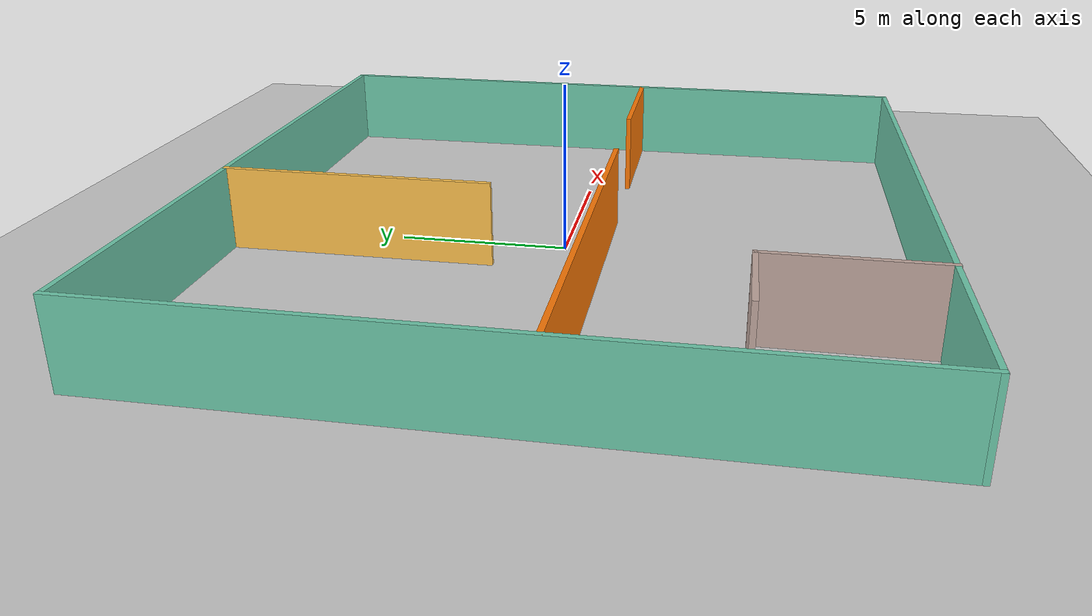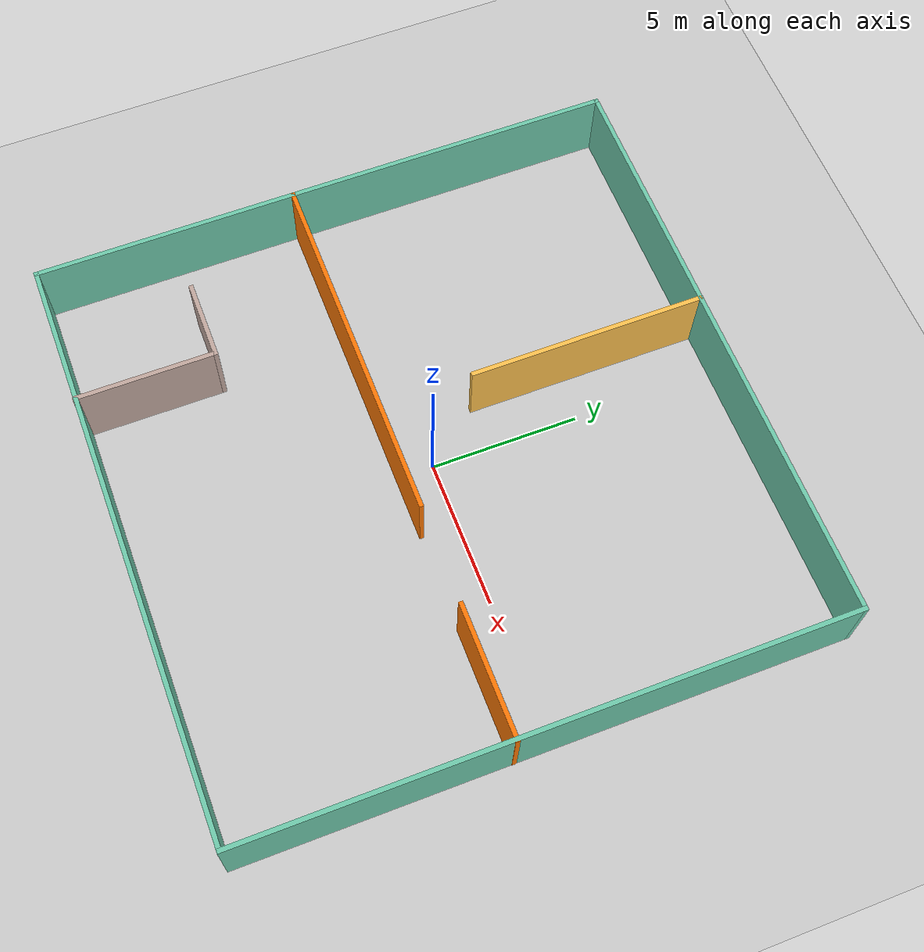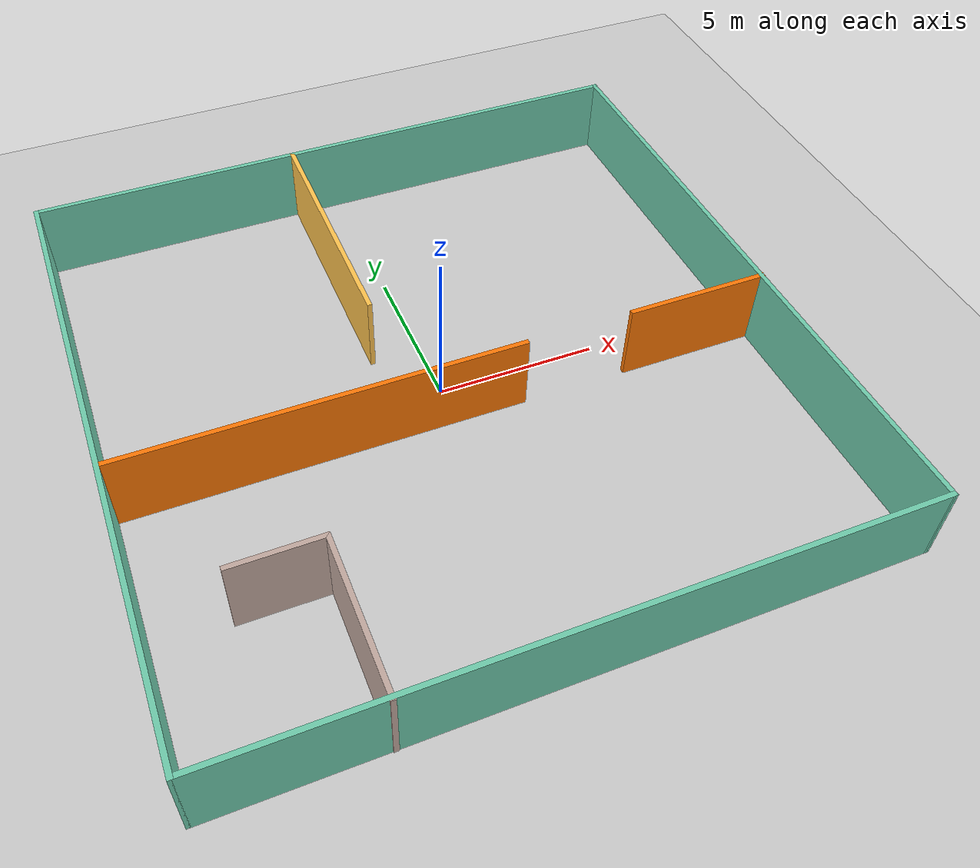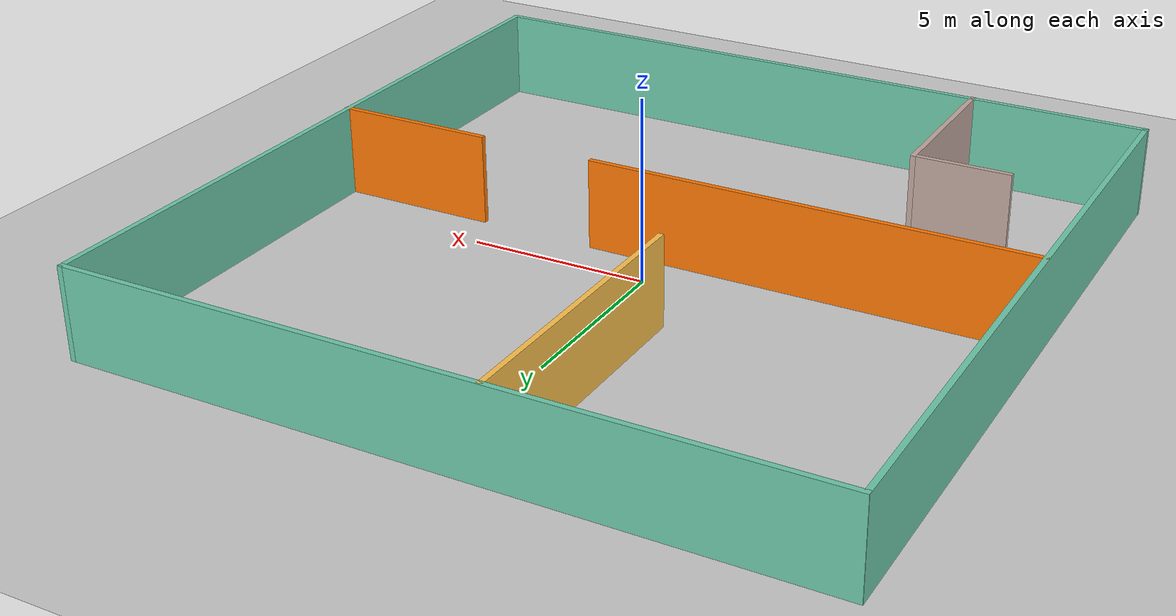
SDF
<?xml version="1.0" ?>
<sdf version="1.5">
  <world name="default">

    <!-- A global light source -->
    <include>
      <uri>model://sun</uri>
    </include>

    <!-- A ground plane -->
    <include>
      <uri>model://ground_plane</uri>
    </include>

    <include>
      <uri>model://walls</uri>
    </include>

  </world>
</sdf>

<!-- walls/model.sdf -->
<sdf version='1.6'>
  <model name='walls'>
    <pose frame=''>-0.04205 -0.117 0 0 -0 0</pose>
    <link name='Wall_0'>
      <collision name='Wall_0_Collision'>
        <geometry>
          <box>
            <size>20 0.15 2.5</size>
          </box>
        </geometry>
        <pose frame=''>0 0 1.25 0 -0 0</pose>
      </collision>
      <visual name='Wall_0_Visual'>
        <pose frame=''>0 0 1.25 0 -0 0</pose>
        <geometry>
          <box>
            <size>20 0.15 2.5</size>
          </box>
        </geometry>
        <material>
          <script>
            <uri>file://media/materials/scripts/gazebo.material</uri>
            <name>Gazebo/Grey</name>
          </script>
          <ambient>0.435294 0.796078 0.67451 1</ambient>
        </material>
      </visual>
      <pose frame=''>-9.93795 0.012 0 0 -0 1.5708</pose>
    </link>
    <link name='Wall_10'>
      <collision name='Wall_10_Collision'>
        <geometry>
          <box>
            <size>4.5 0.15 2.5</size>
          </box>
        </geometry>
        <pose frame=''>0 0 1.25 0 -0 0</pose>
      </collision>
      <visual name='Wall_10_Visual'>
        <pose frame=''>0 0 1.25 0 -0 0</pose>
        <geometry>
          <box>
            <size>4.5 0.15 2.5</size>
          </box>
        </geometry>
        <material>
          <script>
            <uri>file://media/materials/scripts/gazebo.material</uri>
            <name>Gazebo/Grey</name>
          </script>
          <ambient>0.996078 0.47451 0.0196078 1</ambient>
        </material>
      </visual>
      <pose frame=''>7.76295 -1.10377 0 0 -0 0</pose>
    </link>
    <link name='Wall_12'>
      <collision name='Wall_12_Collision'>
        <geometry>
          <box>
            <size>8 0.15 2.5</size>
          </box>
        </geometry>
        <pose frame=''>0 0 1.25 0 -0 0</pose>
      </collision>
      <visual name='Wall_12_Visual'>
        <pose frame=''>0 0 1.25 0 -0 0</pose>
        <geometry>
          <box>
            <size>8 0.15 2.5</size>
          </box>
        </geometry>
        <material>
          <script>
            <uri>file://media/materials/scripts/gazebo.material</uri>
            <name>Gazebo/Grey</name>
          </script>
          <ambient>1 0.764706 0.305882 1</ambient>
        </material>
      </visual>
      <pose frame=''>-1.45895 5.974 0 0 0 -1.5708</pose>
    </link>
    <link name='Wall_14'>
      <collision name='Wall_14_Collision'>
        <geometry>
          <box>
            <size>4.75 0.15 2.5</size>
          </box>
        </geometry>
        <pose frame=''>0 0 1.25 0 -0 0</pose>
      </collision>
      <visual name='Wall_14_Visual'>
        <pose frame=''>0 0 1.25 0 -0 0</pose>
        <geometry>
          <box>
            <size>4.75 0.15 2.5</size>
          </box>
        </geometry>
        <material>
          <script>
            <uri>file://media/materials/scripts/gazebo.material</uri>
            <name>Gazebo/Grey</name>
          </script>
          <ambient>0.760784 0.662745 0.627451 1</ambient>
        </material>
      </visual>
      <pose frame=''>-5.05595 -7.637 0 0 -0 1.5708</pose>
    </link>
    <link name='Wall_15'>
      <collision name='Wall_15_Collision'>
        <geometry>
          <box>
            <size>2.75 0.15 2.5</size>
          </box>
        </geometry>
        <pose frame=''>0 0 1.25 0 -0 0</pose>
      </collision>
      <visual name='Wall_15_Visual'>
        <pose frame=''>0 0 1.25 0 -0 0</pose>
        <geometry>
          <box>
            <size>2.75 0.15 2.5</size>
          </box>
        </geometry>
        <material>
          <script>
            <uri>file://media/materials/scripts/gazebo.material</uri>
            <name>Gazebo/Grey</name>
          </script>
          <ambient>0.760784 0.662745 0.627451 1</ambient>
        </material>
      </visual>
      <pose frame=''>-6.35595 -5.337 0 0 -0 3.14159</pose>
    </link>
    <link name='Wall_2'>
      <collision name='Wall_2_Collision'>
        <geometry>
          <box>
            <size>20 0.15 2.5</size>
          </box>
        </geometry>
        <pose frame=''>0 0 1.25 0 -0 0</pose>
      </collision>
      <visual name='Wall_2_Visual'>
        <pose frame=''>0 0 1.25 0 -0 0</pose>
        <geometry>
          <box>
            <size>20 0.15 2.5</size>
          </box>
        </geometry>
        <material>
          <script>
            <uri>file://media/materials/scripts/gazebo.material</uri>
            <name>Gazebo/Grey</name>
          </script>
          <ambient>0.435294 0.796078 0.67451 1</ambient>
        </material>
      </visual>
      <pose frame=''>-0.01295 -9.913 0 0 -0 0</pose>
    </link>
    <link name='Wall_4'>
      <collision name='Wall_4_Collision'>
        <geometry>
          <box>
            <size>20 0.15 2.5</size>
          </box>
        </geometry>
        <pose frame=''>0 0 1.25 0 -0 0</pose>
      </collision>
      <visual name='Wall_4_Visual'>
        <pose frame=''>0 0 1.25 0 -0 0</pose>
        <geometry>
          <box>
            <size>20 0.15 2.5</size>
          </box>
        </geometry>
        <material>
          <script>
            <uri>file://media/materials/scripts/gazebo.material</uri>
            <name>Gazebo/Grey</name>
          </script>
          <ambient>0.435294 0.796078 0.67451 1</ambient>
        </material>
      </visual>
      <pose frame=''>9.92205 0.012 0 0 -0 1.5708</pose>
    </link>
    <link name='Wall_6'>
      <collision name='Wall_6_Collision'>
        <geometry>
          <box>
            <size>20 0.15 2.5</size>
          </box>
        </geometry>
        <pose frame=''>0 0 1.25 0 -0 0</pose>
      </collision>
      <visual name='Wall_6_Visual'>
        <pose frame=''>0 0 1.25 0 -0 0</pose>
        <geometry>
          <box>
            <size>20 0.15 2.5</size>
          </box>
        </geometry>
        <material>
          <script>
            <uri>file://media/materials/scripts/gazebo.material</uri>
            <name>Gazebo/Grey</name>
          </script>
          <ambient>0.435294 0.796078 0.67451 1</ambient>
        </material>
      </visual>
      <pose frame=''>-0.00295 9.937 0 0 -0 3.14159</pose>
    </link>
    <link name='Wall_8'>
      <collision name='Wall_8_Collision'>
        <geometry>
          <box>
            <size>12.25 0.15 2.5</size>
          </box>
        </geometry>
        <pose frame=''>0 0 1.25 0 -0 0</pose>
      </collision>
      <visual name='Wall_8_Visual'>
        <pose frame=''>0 0 1.25 0 -0 0</pose>
        <geometry>
          <box>
            <size>12.25 0.15 2.5</size>
          </box>
        </geometry>
        <material>
          <script>
            <uri>file://media/materials/scripts/gazebo.material</uri>
            <name>Gazebo/Grey</name>
          </script>
          <ambient>0.996078 0.47451 0.0196078 1</ambient>
        </material>
      </visual>
      <pose frame=''>-3.87295 -1.096 0 0 -0 0</pose>
    </link>
    <static>1</static>
  </model>
</sdf>
